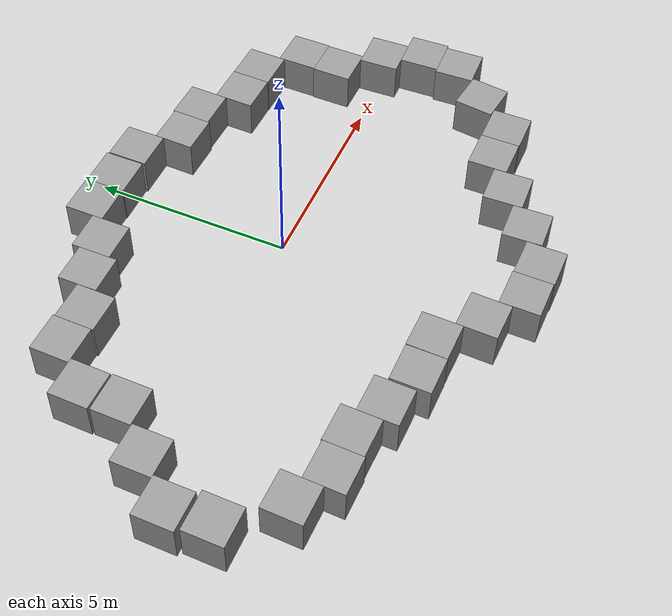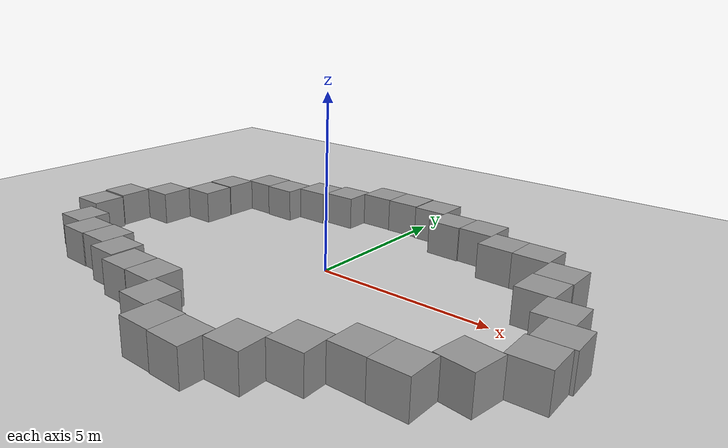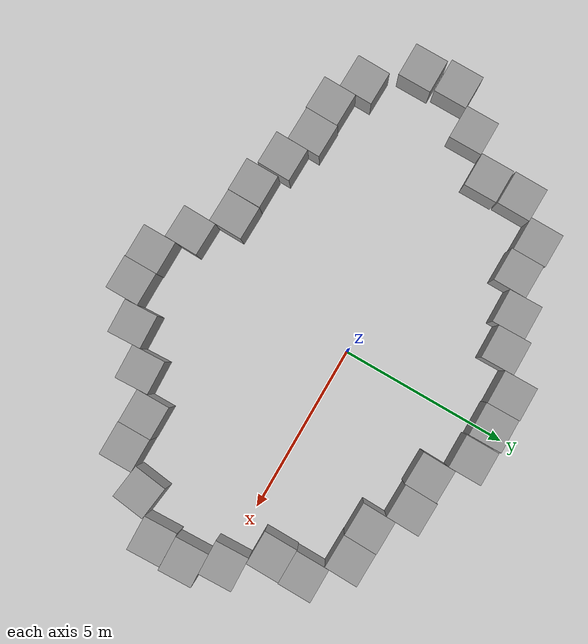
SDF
<sdf version="1.6">
 <world name="default">
  <light name="sun" type="directional">
   <pose>0 0 10 0 -0 0</pose>
   <diffuse>0.8 0.8 0.8 1</diffuse>
   <specular>0.2 0.2 0.2 1</specular>
   <attenuation>
    <range>1000</range>
    <constant>0.9</constant>
    <linear>0.01</linear>
    <quadratic>0.001</quadratic>
   </attenuation>
   <direction>-0.5 0.1 -0.9</direction>
  </light>
  <model name="ground_plane">
   <static>1</static>
   <link name="link">
    <collision name="collision">
     <geometry><plane><normal>0 0 1</normal><size>100 100</size></plane></geometry>
     <surface><friction><ode><mu>100</mu><mu2>50</mu2></ode></friction></surface>
    </collision>
    <visual name="visual">
     <cast_shadows>0</cast_shadows>
     <geometry><plane><normal>0 0 1</normal><size>100 100</size></plane></geometry>
     <material>
      <script><uri>file://media/materials/scripts/gazebo.material</uri><name>Gazebo/Grey</name></script>
     </material>
    </visual>
   </link>
  </model>
  <gravity>0 0 -9.8</gravity>
  <magnetic_field>6e-06 2.3e-05 -4.2e-05</magnetic_field>
  <atmosphere type="adiabatic"/>
  <physics name="default_physics" default="0" type="ode">
   <max_step_size>0.001</max_step_size>
   <real_time_factor>1</real_time_factor>
   <real_time_update_rate>1000</real_time_update_rate>
  </physics>
  <scene><ambient>0.4 0.4 0.4 1</ambient><background>0.7 0.7 0.7 1</background><shadows>1</shadows></scene>
  <audio><device>default</device></audio>
  <spherical_coordinates>
   <surface_model>EARTH_WGS84</surface_model>
   <latitude_deg>0</latitude_deg>
   <longitude_deg>0</longitude_deg>
   <elevation>0</elevation>
   <heading_deg>0</heading_deg>
  </spherical_coordinates>
  <model name="unit_box">
   <pose>0.831343 4.41806 0.499995 -0 1e-05 -0.001773</pose>
   <link name="link">
    <inertial>
     <mass>1</mass>
     <inertia>
      <ixx>0.166667</ixx>
      <ixy>0</ixy>
      <ixz>0</ixz>
      <iyy>0.166667</iyy>
      <iyz>0</iyz>
      <izz>0.166667</izz>
     </inertia>
    </inertial>
    <collision name="collision"><geometry><box><size>1 1 1</size></box></geometry></collision>
    <visual name="visual">
     <geometry><box><size>1 1 1</size></box></geometry>
     <material>
      <script><name>Gazebo/Grey</name><uri>file://media/materials/scripts/gazebo.material</uri></script>
     </material>
    </visual>
   </link>
  </model>
  <model name="unit_box_0">
   <pose>1.82394 3.62645 0.499995 1e-05 -0 -0.023661</pose>
   <link name="link">
    <inertial>
     <mass>1</mass>
     <inertia>
      <ixx>0.166667</ixx>
      <ixy>0</ixy>
      <ixz>0</ixz>
      <iyy>0.166667</iyy>
      <iyz>0</iyz>
      <izz>0.166667</izz>
     </inertia>
    </inertial>
    <collision name="collision"><geometry><box><size>1 1 1</size></box></geometry></collision>
    <visual name="visual">
     <geometry><box><size>1 1 1</size></box></geometry>
     <material>
      <script><name>Gazebo/Grey</name><uri>file://media/materials/scripts/gazebo.material</uri></script>
     </material>
    </visual>
   </link>
  </model>
  <model name="unit_box_1">
   <pose>-0.195054 4.46017 0.499995 -1e-05 -0 0.008716</pose>
   <link name="link">
    <inertial>
     <mass>1</mass>
     <inertia>
      <ixx>0.166667</ixx>
      <ixy>0</ixy>
      <ixz>0</ixz>
      <iyy>0.166667</iyy>
      <iyz>0</iyz>
      <izz>0.166667</izz>
     </inertia>
    </inertial>
    <collision name="collision"><geometry><box><size>1 1 1</size></box></geometry></collision>
    <visual name="visual">
     <geometry><box><size>1 1 1</size></box></geometry>
     <material>
      <script><name>Gazebo/Grey</name><uri>file://media/materials/scripts/gazebo.material</uri></script>
     </material>
    </visual>
   </link>
  </model>
  <model name="unit_box_2">
   <pose>-1.19535 4.47108 0.499995 -1e-05 0 0.008629</pose>
   <link name="link">
    <inertial>
     <mass>1</mass>
     <inertia>
      <ixx>0.166667</ixx>
      <ixy>0</ixy>
      <ixz>0</ixz>
      <iyy>0.166667</iyy>
      <iyz>0</iyz>
      <izz>0.166667</izz>
     </inertia>
    </inertial>
    <collision name="collision"><geometry><box><size>1 1 1</size></box></geometry></collision>
    <visual name="visual">
     <geometry><box><size>1 1 1</size></box></geometry>
     <material>
      <script><name>Gazebo/Grey</name><uri>file://media/materials/scripts/gazebo.material</uri></script>
     </material>
    </visual>
   </link>
  </model>
  <model name="unit_box_3">
   <pose>-2.1881 3.71982 0.5 0 -0 0.012286</pose>
   <link name="link">
    <inertial>
     <mass>1</mass>
     <inertia>
      <ixx>0.166667</ixx>
      <ixy>0</ixy>
      <ixz>0</ixz>
      <iyy>0.166667</iyy>
      <iyz>0</iyz>
      <izz>0.166667</izz>
     </inertia>
    </inertial>
    <collision name="collision"><geometry><box><size>1 1 1</size></box></geometry></collision>
    <visual name="visual">
     <geometry><box><size>1 1 1</size></box></geometry>
     <material>
      <script><name>Gazebo/Grey</name><uri>file://media/materials/scripts/gazebo.material</uri></script>
     </material>
    </visual>
   </link>
  </model>
  <model name="unit_box_4">
   <pose>-3.18553 3.50397 0.5 0 -0 0.012284</pose>
   <link name="link">
    <inertial>
     <mass>1</mass>
     <inertia>
      <ixx>0.166667</ixx>
      <ixy>0</ixy>
      <ixz>0</ixz>
      <iyy>0.166667</iyy>
      <iyz>0</iyz>
      <izz>0.166667</izz>
     </inertia>
    </inertial>
    <collision name="collision"><geometry><box><size>1 1 1</size></box></geometry></collision>
    <visual name="visual">
     <geometry><box><size>1 1 1</size></box></geometry>
     <material>
      <script><name>Gazebo/Grey</name><uri>file://media/materials/scripts/gazebo.material</uri></script>
     </material>
    </visual>
   </link>
  </model>
  <model name="unit_box_5">
   <pose>-4.18828 2.98598 0.499995 -1e-05 -0 -0.0059</pose>
   <link name="link">
    <inertial>
     <mass>1</mass>
     <inertia>
      <ixx>0.166667</ixx>
      <ixy>0</ixy>
      <ixz>0</ixz>
      <iyy>0.166667</iyy>
      <iyz>0</iyz>
      <izz>0.166667</izz>
     </inertia>
    </inertial>
    <collision name="collision"><geometry><box><size>1 1 1</size></box></geometry></collision>
    <visual name="visual">
     <geometry><box><size>1 1 1</size></box></geometry>
     <material>
      <script><name>Gazebo/Grey</name><uri>file://media/materials/scripts/gazebo.material</uri></script>
     </material>
    </visual>
   </link>
  </model>
  <model name="unit_box_6">
   <pose>-5.18803 3.03301 0.499995 -0 1e-05 -0.005916</pose>
   <link name="link">
    <inertial>
     <mass>1</mass>
     <inertia>
      <ixx>0.166667</ixx>
      <ixy>0</ixy>
      <ixz>0</ixz>
      <iyy>0.166667</iyy>
      <iyz>0</iyz>
      <izz>0.166667</izz>
     </inertia>
    </inertial>
    <collision name="collision"><geometry><box><size>1 1 1</size></box></geometry></collision>
    <visual name="visual">
     <geometry><box><size>1 1 1</size></box></geometry>
     <material>
      <script><name>Gazebo/Grey</name><uri>file://media/materials/scripts/gazebo.material</uri></script>
     </material>
    </visual>
   </link>
  </model>
  <model name="unit_box_7">
   <pose>-6.07585 2.03988 0.499995 0 1e-05 -0.010261</pose>
   <link name="link">
    <inertial>
     <mass>1</mass>
     <inertia>
      <ixx>0.166667</ixx>
      <ixy>0</ixy>
      <ixz>0</ixz>
      <iyy>0.166667</iyy>
      <iyz>0</iyz>
      <izz>0.166667</izz>
     </inertia>
    </inertial>
    <collision name="collision"><geometry><box><size>1 1 1</size></box></geometry></collision>
    <visual name="visual">
     <geometry><box><size>1 1 1</size></box></geometry>
     <material>
      <script><name>Gazebo/Grey</name><uri>file://media/materials/scripts/gazebo.material</uri></script>
     </material>
    </visual>
   </link>
  </model>
  <model name="unit_box_8">
   <pose>-6.06114 0.997217 0.499995 -1e-05 -0 -1.5e-05</pose>
   <link name="link">
    <inertial>
     <mass>1</mass>
     <inertia>
      <ixx>0.166667</ixx>
      <ixy>0</ixy>
      <ixz>0</ixz>
      <iyy>0.166667</iyy>
      <iyz>0</iyz>
      <izz>0.166667</izz>
     </inertia>
    </inertial>
    <collision name="collision"><geometry><box><size>1 1 1</size></box></geometry></collision>
    <visual name="visual">
     <geometry><box><size>1 1 1</size></box></geometry>
     <material>
      <script><name>Gazebo/Grey</name><uri>file://media/materials/scripts/gazebo.material</uri></script>
     </material>
    </visual>
   </link>
  </model>
  <model name="unit_box_9">
   <pose>2.82459 3.64121 0.499995 1e-05 -0 -0.023665</pose>
   <link name="link">
    <inertial>
     <mass>1</mass>
     <inertia>
      <ixx>0.166667</ixx>
      <ixy>0</ixy>
      <ixz>0</ixz>
      <iyy>0.166667</iyy>
      <iyz>0</iyz>
      <izz>0.166667</izz>
     </inertia>
    </inertial>
    <collision name="collision"><geometry><box><size>1 1 1</size></box></geometry></collision>
    <visual name="visual">
     <geometry><box><size>1 1 1</size></box></geometry>
     <material>
      <script><name>Gazebo/Grey</name><uri>file://media/materials/scripts/gazebo.material</uri></script>
     </material>
    </visual>
   </link>
  </model>
  <model name="unit_box_10">
   <pose>3.80832 2.90521 0.499995 1e-05 -0 -0.022347</pose>
   <link name="link">
    <inertial>
     <mass>1</mass>
     <inertia>
      <ixx>0.166667</ixx>
      <ixy>0</ixy>
      <ixz>0</ixz>
      <iyy>0.166667</iyy>
      <iyz>0</iyz>
      <izz>0.166667</izz>
     </inertia>
    </inertial>
    <collision name="collision"><geometry><box><size>1 1 1</size></box></geometry></collision>
    <visual name="visual">
     <geometry><box><size>1 1 1</size></box></geometry>
     <material>
      <script><name>Gazebo/Grey</name><uri>file://media/materials/scripts/gazebo.material</uri></script>
     </material>
    </visual>
   </link>
  </model>
  <model name="unit_box_11">
   <pose>4.80791 2.87569 0.499995 -1e-05 -0 -0.022347</pose>
   <link name="link">
    <inertial>
     <mass>1</mass>
     <inertia>
      <ixx>0.166667</ixx>
      <ixy>0</ixy>
      <ixz>0</ixz>
      <iyy>0.166667</iyy>
      <iyz>0</iyz>
      <izz>0.166667</izz>
     </inertia>
    </inertial>
    <collision name="collision"><geometry><box><size>1 1 1</size></box></geometry></collision>
    <visual name="visual">
     <geometry><box><size>1 1 1</size></box></geometry>
     <material>
      <script><name>Gazebo/Grey</name><uri>file://media/materials/scripts/gazebo.material</uri></script>
     </material>
    </visual>
   </link>
  </model>
  <model name="unit_box_12">
   <pose>-7.01004 -0.014591 0.499995 1e-05 -0 1e-05</pose>
   <link name="link">
    <inertial>
     <mass>1</mass>
     <inertia>
      <ixx>0.166667</ixx>
      <ixy>0</ixy>
      <ixz>0</ixz>
      <iyy>0.166667</iyy>
      <iyz>0</iyz>
      <izz>0.166667</izz>
     </inertia>
    </inertial>
    <collision name="collision"><geometry><box><size>1 1 1</size></box></geometry></collision>
    <visual name="visual">
     <geometry><box><size>1 1 1</size></box></geometry>
     <material>
      <script><name>Gazebo/Grey</name><uri>file://media/materials/scripts/gazebo.material</uri></script>
     </material>
    </visual>
   </link>
  </model>
  <model name="unit_box_13">
   <pose>-7.92873 -1.01646 0.499995 1e-05 -0 1e-05</pose>
   <link name="link">
    <inertial>
     <mass>1</mass>
     <inertia>
      <ixx>0.166667</ixx>
      <ixy>0</ixy>
      <ixz>0</ixz>
      <iyy>0.166667</iyy>
      <iyz>0</iyz>
      <izz>0.166667</izz>
     </inertia>
    </inertial>
    <collision name="collision"><geometry><box><size>1 1 1</size></box></geometry></collision>
    <visual name="visual">
     <geometry><box><size>1 1 1</size></box></geometry>
     <material>
      <script><name>Gazebo/Grey</name><uri>file://media/materials/scripts/gazebo.material</uri></script>
     </material>
    </visual>
   </link>
  </model>
  <model name="unit_box_14">
   <pose>-7.8305 -2.09418 0.499995 1e-05 -0 1e-05</pose>
   <link name="link">
    <inertial>
     <mass>1</mass>
     <inertia>
      <ixx>0.166667</ixx>
      <ixy>0</ixy>
      <ixz>0</ixz>
      <iyy>0.166667</iyy>
      <iyz>0</iyz>
      <izz>0.166667</izz>
     </inertia>
    </inertial>
    <collision name="collision"><geometry><box><size>1 1 1</size></box></geometry></collision>
    <visual name="visual">
     <geometry><box><size>1 1 1</size></box></geometry>
     <material>
      <script><name>Gazebo/Grey</name><uri>file://media/materials/scripts/gazebo.material</uri></script>
     </material>
    </visual>
   </link>
  </model>
  <model name="unit_box_15">
   <pose>-6.73539 -3.32737 0.499995 -1e-05 -0 -0.019647</pose>
   <link name="link">
    <inertial>
     <mass>1</mass>
     <inertia>
      <ixx>0.166667</ixx>
      <ixy>0</ixy>
      <ixz>0</ixz>
      <iyy>0.166667</iyy>
      <iyz>0</iyz>
      <izz>0.166667</izz>
     </inertia>
    </inertial>
    <collision name="collision"><geometry><box><size>1 1 1</size></box></geometry></collision>
    <visual name="visual">
     <geometry><box><size>1 1 1</size></box></geometry>
     <material>
      <script><name>Gazebo/Grey</name><uri>file://media/materials/scripts/gazebo.material</uri></script>
     </material>
    </visual>
   </link>
  </model>
  <model name="unit_box_16">
   <pose>-5.74521 -3.83863 0.499995 0 -1e-05 -0.019634</pose>
   <link name="link">
    <inertial>
     <mass>1</mass>
     <inertia>
      <ixx>0.166667</ixx>
      <ixy>0</ixy>
      <ixz>0</ixz>
      <iyy>0.166667</iyy>
      <iyz>0</iyz>
      <izz>0.166667</izz>
     </inertia>
    </inertial>
    <collision name="collision"><geometry><box><size>1 1 1</size></box></geometry></collision>
    <visual name="visual">
     <geometry><box><size>1 1 1</size></box></geometry>
     <material>
      <script><name>Gazebo/Grey</name><uri>file://media/materials/scripts/gazebo.material</uri></script>
     </material>
    </visual>
   </link>
  </model>
  <model name="unit_box_17">
   <pose>-4.7446 -3.83329 0.499995 1e-05 0 -0.01951</pose>
   <link name="link">
    <inertial>
     <mass>1</mass>
     <inertia>
      <ixx>0.166667</ixx>
      <ixy>0</ixy>
      <ixz>0</ixz>
      <iyy>0.166667</iyy>
      <iyz>0</iyz>
      <izz>0.166667</izz>
     </inertia>
    </inertial>
    <collision name="collision"><geometry><box><size>1 1 1</size></box></geometry></collision>
    <visual name="visual">
     <geometry><box><size>1 1 1</size></box></geometry>
     <material>
      <script><name>Gazebo/Grey</name><uri>file://media/materials/scripts/gazebo.material</uri></script>
     </material>
    </visual>
   </link>
  </model>
  <model name="unit_box_18">
   <pose>-3.75046 -4.21158 0.499995 -1e-05 -0 -0.017254</pose>
   <link name="link">
    <inertial>
     <mass>1</mass>
     <inertia>
      <ixx>0.166667</ixx>
      <ixy>0</ixy>
      <ixz>0</ixz>
      <iyy>0.166667</iyy>
      <iyz>0</iyz>
      <izz>0.166667</izz>
     </inertia>
    </inertial>
    <collision name="collision"><geometry><box><size>1 1 1</size></box></geometry></collision>
    <visual name="visual">
     <geometry><box><size>1 1 1</size></box></geometry>
     <material>
      <script><name>Gazebo/Grey</name><uri>file://media/materials/scripts/gazebo.material</uri></script>
     </material>
    </visual>
   </link>
  </model>
  <model name="unit_box_19">
   <pose>-2.70443 -4.53962 0.499995 1e-05 -0 -0.007557</pose>
   <link name="link">
    <inertial>
     <mass>1</mass>
     <inertia>
      <ixx>0.166667</ixx>
      <ixy>0</ixy>
      <ixz>0</ixz>
      <iyy>0.166667</iyy>
      <iyz>0</iyz>
      <izz>0.166667</izz>
     </inertia>
    </inertial>
    <collision name="collision"><geometry><box><size>1 1 1</size></box></geometry></collision>
    <visual name="visual">
     <geometry><box><size>1 1 1</size></box></geometry>
     <material>
      <script><name>Gazebo/Grey</name><uri>file://media/materials/scripts/gazebo.material</uri></script>
     </material>
    </visual>
   </link>
  </model>
  <model name="unit_box_20">
   <pose>-1.69842 -4.54367 0.499995 1e-05 0 -0.017418</pose>
   <link name="link">
    <inertial>
     <mass>1</mass>
     <inertia>
      <ixx>0.166667</ixx>
      <ixy>0</ixy>
      <ixz>0</ixz>
      <iyy>0.166667</iyy>
      <iyz>0</iyz>
      <izz>0.166667</izz>
     </inertia>
    </inertial>
    <collision name="collision"><geometry><box><size>1 1 1</size></box></geometry></collision>
    <visual name="visual">
     <geometry><box><size>1 1 1</size></box></geometry>
     <material>
      <script><name>Gazebo/Grey</name><uri>file://media/materials/scripts/gazebo.material</uri></script>
     </material>
    </visual>
   </link>
  </model>
  <model name="unit_box_21">
   <pose>-0.714621 -5.36743 0.499995 -0 1e-05 -0.024202</pose>
   <link name="link">
    <inertial>
     <mass>1</mass>
     <inertia>
      <ixx>0.166667</ixx>
      <ixy>0</ixy>
      <ixz>0</ixz>
      <iyy>0.166667</iyy>
      <iyz>0</iyz>
      <izz>0.166667</izz>
     </inertia>
    </inertial>
    <collision name="collision"><geometry><box><size>1 1 1</size></box></geometry></collision>
    <visual name="visual">
     <geometry><box><size>1 1 1</size></box></geometry>
     <material>
      <script><name>Gazebo/Grey</name><uri>file://media/materials/scripts/gazebo.material</uri></script>
     </material>
    </visual>
   </link>
  </model>
  <model name="unit_box_22">
   <pose>0.280409 -6.04091 0.499995 -0 -1e-05 -0.002187</pose>
   <link name="link">
    <inertial>
     <mass>1</mass>
     <inertia>
      <ixx>0.166667</ixx>
      <ixy>0</ixy>
      <ixz>0</ixz>
      <iyy>0.166667</iyy>
      <iyz>0</iyz>
      <izz>0.166667</izz>
     </inertia>
    </inertial>
    <collision name="collision"><geometry><box><size>1 1 1</size></box></geometry></collision>
    <visual name="visual">
     <geometry><box><size>1 1 1</size></box></geometry>
     <material>
      <script><name>Gazebo/Grey</name><uri>file://media/materials/scripts/gazebo.material</uri></script>
     </material>
    </visual>
   </link>
  </model>
  <model name="unit_box_23">
   <pose>1.28037 -6.06214 0.499995 0 -1e-05 -0.002186</pose>
   <link name="link">
    <inertial>
     <mass>1</mass>
     <inertia>
      <ixx>0.166667</ixx>
      <ixy>0</ixy>
      <ixz>0</ixz>
      <iyy>0.166667</iyy>
      <iyz>0</iyz>
      <izz>0.166667</izz>
     </inertia>
    </inertial>
    <collision name="collision"><geometry><box><size>1 1 1</size></box></geometry></collision>
    <visual name="visual">
     <geometry><box><size>1 1 1</size></box></geometry>
     <material>
      <script><name>Gazebo/Grey</name><uri>file://media/materials/scripts/gazebo.material</uri></script>
     </material>
    </visual>
   </link>
  </model>
  <model name="unit_box_24">
   <pose>2.27601 -5.41742 0.499995 0 -1e-05 0.041227</pose>
   <link name="link">
    <inertial>
     <mass>1</mass>
     <inertia>
      <ixx>0.166667</ixx>
      <ixy>0</ixy>
      <ixz>0</ixz>
      <iyy>0.166667</iyy>
      <iyz>0</iyz>
      <izz>0.166667</izz>
     </inertia>
    </inertial>
    <collision name="collision"><geometry><box><size>1 1 1</size></box></geometry></collision>
    <visual name="visual">
     <geometry><box><size>1 1 1</size></box></geometry>
     <material>
      <script><name>Gazebo/Grey</name><uri>file://media/materials/scripts/gazebo.material</uri></script>
     </material>
    </visual>
   </link>
  </model>
  <model name="unit_box_25">
   <pose>3.24361 -4.60672 0.499995 0 -1e-05 0.041246</pose>
   <link name="link">
    <inertial>
     <mass>1</mass>
     <inertia>
      <ixx>0.166667</ixx>
      <ixy>0</ixy>
      <ixz>0</ixz>
      <iyy>0.166667</iyy>
      <iyz>0</iyz>
      <izz>0.166667</izz>
     </inertia>
    </inertial>
    <collision name="collision"><geometry><box><size>1 1 1</size></box></geometry></collision>
    <visual name="visual">
     <geometry><box><size>1 1 1</size></box></geometry>
     <material>
      <script><name>Gazebo/Grey</name><uri>file://media/materials/scripts/gazebo.material</uri></script>
     </material>
    </visual>
   </link>
  </model>
  <model name="unit_box_26">
   <pose>4.23328 -3.8981 0.499995 -1e-05 0 0.004484</pose>
   <link name="link">
    <inertial>
     <mass>1</mass>
     <inertia>
      <ixx>0.166667</ixx>
      <ixy>0</ixy>
      <ixz>0</ixz>
      <iyy>0.166667</iyy>
      <iyz>0</iyz>
      <izz>0.166667</izz>
     </inertia>
    </inertial>
    <collision name="collision"><geometry><box><size>1 1 1</size></box></geometry></collision>
    <visual name="visual">
     <geometry><box><size>1 1 1</size></box></geometry>
     <material>
      <script><name>Gazebo/Grey</name><uri>file://media/materials/scripts/gazebo.material</uri></script>
     </material>
    </visual>
   </link>
  </model>
  <model name="unit_box_27">
   <pose>5.23335 -3.90239 0.499995 -1e-05 -0 0.004442</pose>
   <link name="link">
    <inertial>
     <mass>1</mass>
     <inertia>
      <ixx>0.166667</ixx>
      <ixy>0</ixy>
      <ixz>0</ixz>
      <iyy>0.166667</iyy>
      <iyz>0</iyz>
      <izz>0.166667</izz>
     </inertia>
    </inertial>
    <collision name="collision"><geometry><box><size>1 1 1</size></box></geometry></collision>
    <visual name="visual">
     <geometry><box><size>1 1 1</size></box></geometry>
     <material>
      <script><name>Gazebo/Grey</name><uri>file://media/materials/scripts/gazebo.material</uri></script>
     </material>
    </visual>
   </link>
  </model>
  <model name="unit_box_28">
   <pose>6.08251 -2.94092 0.5 0 0 -0.126831</pose>
   <link name="link">
    <inertial>
     <mass>1</mass>
     <inertia>
      <ixx>0.166667</ixx>
      <ixy>0</ixy>
      <ixz>0</ixz>
      <iyy>0.166667</iyy>
      <iyz>0</iyz>
      <izz>0.166667</izz>
     </inertia>
    </inertial>
    <collision name="collision"><geometry><box><size>1 1 1</size></box></geometry></collision>
    <visual name="visual">
     <geometry><box><size>1 1 1</size></box></geometry>
     <material>
      <script><name>Gazebo/Grey</name><uri>file://media/materials/scripts/gazebo.material</uri></script>
     </material>
    </visual>
   </link>
  </model>
  <model name="unit_box_29">
   <pose>7.02414 -1.97654 0.499995 0 1e-05 0.036861</pose>
   <link name="link">
    <inertial>
     <mass>1</mass>
     <inertia>
      <ixx>0.166667</ixx>
      <ixy>0</ixy>
      <ixz>0</ixz>
      <iyy>0.166667</iyy>
      <iyz>0</iyz>
      <izz>0.166667</izz>
     </inertia>
    </inertial>
    <collision name="collision"><geometry><box><size>1 1 1</size></box></geometry></collision>
    <visual name="visual">
     <geometry><box><size>1 1 1</size></box></geometry>
     <material>
      <script><name>Gazebo/Grey</name><uri>file://media/materials/scripts/gazebo.material</uri></script>
     </material>
    </visual>
   </link>
  </model>
  <model name="unit_box_30">
   <pose>7.07237 -0.973525 0.499995 -0 1e-05 0.037396</pose>
   <link name="link">
    <inertial>
     <mass>1</mass>
     <inertia>
      <ixx>0.166667</ixx>
      <ixy>0</ixy>
      <ixz>0</ixz>
      <iyy>0.166667</iyy>
      <iyz>0</iyz>
      <izz>0.166667</izz>
     </inertia>
    </inertial>
    <collision name="collision"><geometry><box><size>1 1 1</size></box></geometry></collision>
    <visual name="visual">
     <geometry><box><size>1 1 1</size></box></geometry>
     <material>
      <script><name>Gazebo/Grey</name><uri>file://media/materials/scripts/gazebo.material</uri></script>
     </material>
    </visual>
   </link>
  </model>
  <model name="unit_box_31">
   <pose>6.62566 0.010728 0.499995 1e-05 -0 0.036914</pose>
   <link name="link">
    <inertial>
     <mass>1</mass>
     <inertia>
      <ixx>0.166667</ixx>
      <ixy>0</ixy>
      <ixz>0</ixz>
      <iyy>0.166667</iyy>
      <iyz>0</iyz>
      <izz>0.166667</izz>
     </inertia>
    </inertial>
    <collision name="collision"><geometry><box><size>1 1 1</size></box></geometry></collision>
    <visual name="visual">
     <geometry><box><size>1 1 1</size></box></geometry>
     <material>
      <script><name>Gazebo/Grey</name><uri>file://media/materials/scripts/gazebo.material</uri></script>
     </material>
    </visual>
   </link>
  </model>
  <model name="unit_box_33">
   <pose>5.79707 2.00038 0.499995 1e-05 0 -0.005262</pose>
   <link name="link">
    <inertial>
     <mass>1</mass>
     <inertia>
      <ixx>0.166667</ixx>
      <ixy>0</ixy>
      <ixz>0</ixz>
      <iyy>0.166667</iyy>
      <iyz>0</iyz>
      <izz>0.166667</izz>
     </inertia>
    </inertial>
    <collision name="collision"><geometry><box><size>1 1 1</size></box></geometry></collision>
    <visual name="visual">
     <geometry><box><size>1 1 1</size></box></geometry>
     <material>
      <script><name>Gazebo/Grey</name><uri>file://media/materials/scripts/gazebo.material</uri></script>
     </material>
    </visual>
   </link>
  </model>
  <model name="unit_box_34">
   <pose>5.77114 1.00051 0.499995 -1e-05 -0 -0.005259</pose>
   <link name="link">
    <inertial>
     <mass>1</mass>
     <inertia>
      <ixx>0.166667</ixx>
      <ixy>0</ixy>
      <ixz>0</ixz>
      <iyy>0.166667</iyy>
      <iyz>0</iyz>
      <izz>0.166667</izz>
     </inertia>
    </inertial>
    <collision name="collision"><geometry><box><size>1 1 1</size></box></geometry></collision>
    <visual name="visual">
     <geometry><box><size>1 1 1</size></box></geometry>
     <material>
      <script><name>Gazebo/Grey</name><uri>file://media/materials/scripts/gazebo.material</uri></script>
     </material>
    </visual>
   </link>
  </model>
 </world>
</sdf>
